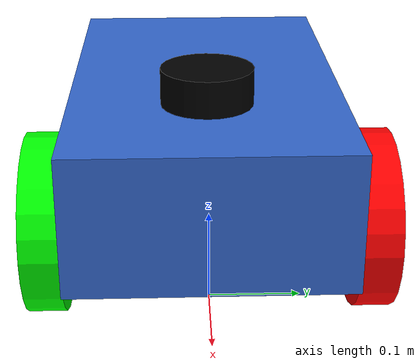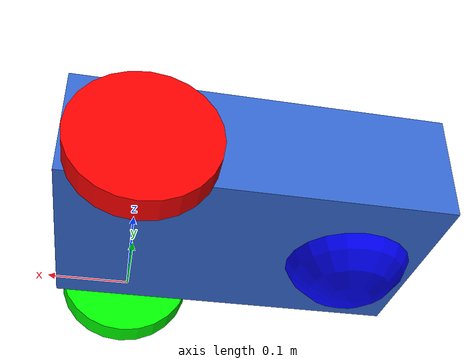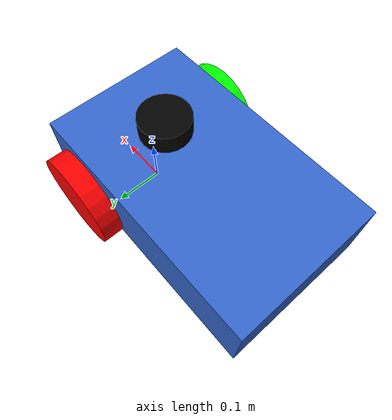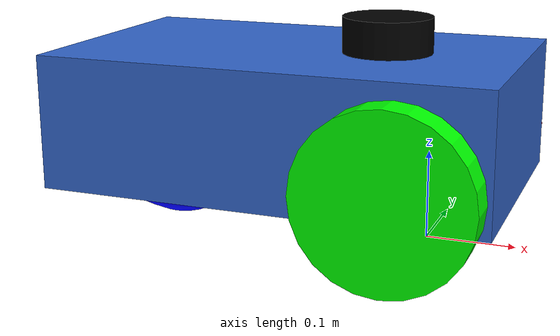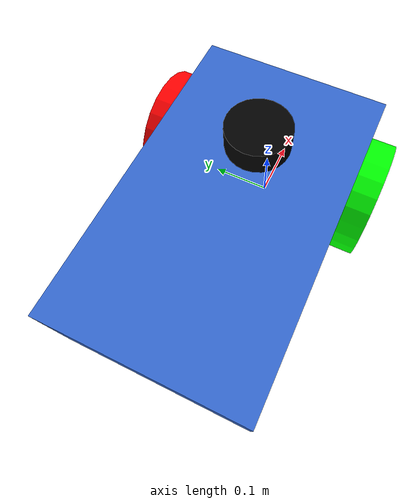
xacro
<?xml version="1.0"?>
<robot xmlns:xacro="http://www.ros.org/wiki/xacro" name="diff_drive_robot">

    <!-- ==================== КОНФИГУРАЦИЯ ПАРАМЕТРОВ ==================== -->
    <!-- Все размеры в метрах, массы в кг, углы в радианах -->

    <!-- Размеры базы (коробка) -->
    <xacro:property name="base_length" value="0.5"/>
    <xacro:property name="base_width" value="0.3"/>
    <xacro:property name="base_height" value="0.15"/>
    <xacro:property name="base_mass" value="5.0"/>

    <!-- Размеры колес -->
    <xacro:property name="wheel_radius" value="0.095"/>
    <xacro:property name="wheel_width" value="0.04"/>
    <xacro:property name="wheel_mass" value="0.5"/>

    <!-- Позиции колес -->
    <xacro:property name="wheel_x_offset" value="0.15"/>
    <xacro:property name="wheel_y_offset" value="${base_width/2 + wheel_width/2}"/>
    <xacro:property name="wheel_z_offset" value="${-base_height/4}"/>

    <!-- Размеры лидара -->
    <xacro:property name="lidar_radius" value="0.05"/>
    <xacro:property name="lidar_height" value="0.04"/>
    <xacro:property name="lidar_mass" value="0.15"/>
    <xacro:property name="lidar_x_offset" value="0.1"/>
    <xacro:property name="lidar_z_offset" value="${base_height/2 + lidar_height/2}"/>

    <!-- Параметры лидара -->
    <xacro:property name="lidar_samples" value="180"/>
    <xacro:property name="lidar_min_range" value="0.12"/>
    <xacro:property name="lidar_max_range" value="10.0"/>
    <xacro:property name="lidar_update_rate" value="20"/>

    <!-- Параметры дифференциального привода -->
    <xacro:property name="wheel_separation" value="${base_width + wheel_width}"/>
    <xacro:property name="max_linear_velocity" value="0.5"/>
    <xacro:property name="max_angular_velocity" value="1.0"/>
    <xacro:property name="odom_publish_frequency" value="50"/>

    <!-- ==================== БАЗОВОЕ ЗВЕНО ==================== -->
    <link name="base_footprint"></link>
    <joint name="base_joint" type="fixed">
        <origin xyz="${-wheel_x_offset} 0 ${-wheel_z_offset + wheel_radius}" rpy="0 0 0"/>
        <parent link="base_footprint"/>
        <child link="base_link"/>
    </joint>

    <link name="base_link">
        <visual>
            <origin xyz="0 0 0" rpy="0 0 0"/>
            <geometry>
                <box size="${base_length} ${base_width} ${base_height}"/>
            </geometry>
            <material name="blue">
                <color rgba="0.2 0.4 0.8 1.0"/>
            </material>
        </visual>

        <collision>
            <origin xyz="0 0 0" rpy="0 0 0"/>
            <geometry>
                <box size="${base_length} ${base_width} ${base_height}"/>
            </geometry>
        </collision>

        <inertial>
            <origin xyz="0 0 0" rpy="0 0 0"/>
            <mass value="${base_mass}"/>
            <inertia
                ixx="${base_mass * (base_width*base_width + base_height*base_height) / 12}"
                iyy="${base_mass * (base_length*base_length + base_height*base_height) / 12}"
                izz="${base_mass * (base_length*base_length + base_width*base_width) / 12}"
                ixy="0.0" ixz="0.0" iyz="0.0"/>
        </inertial>
    </link>

    <!-- ==================== ЛЕВОЕ КОЛЕСО ==================== -->

    <joint name="left_wheel_joint" type="continuous">
        <origin xyz="${wheel_x_offset} ${wheel_y_offset} ${wheel_z_offset}" rpy="0 0 0"/>
        <parent link="base_link"/>
        <child link="left_wheel"/>
        <axis xyz="0 1 0"/>
        <limit effort="100" velocity="100"/>
        <dynamics damping="0.0" friction="0.0"/>
    </joint>

    <link name="left_wheel">
        <visual>
            <origin xyz="0 0 0" rpy="${pi/2} 0 0"/>
            <geometry>
                <cylinder radius="${wheel_radius}" length="${wheel_width}"/>
            </geometry>
            <material name="red">
                <color rgba="1 0 0 1"/>
            </material>
        </visual>

        <collision>
            <origin xyz="0 0 0" rpy="${pi/2} 0 0"/>
            <geometry>
                <cylinder radius="${wheel_radius}" length="${wheel_width}"/>
            </geometry>
        </collision>

        <inertial>
            <origin xyz="0 0 0" rpy="${pi/2} 0 0"/>
            <mass value="${wheel_mass}"/>
            <inertia
                ixx="${wheel_mass * (3*wheel_radius*wheel_radius + wheel_width*wheel_width) / 12}"
                iyy="${wheel_mass * (3*wheel_radius*wheel_radius + wheel_width*wheel_width) / 12}"
                izz="${wheel_mass * wheel_radius*wheel_radius / 2}"
                ixy="0.0" ixz="0.0" iyz="0.0"/>
        </inertial>
    </link>

    <!-- ==================== ПРАВОЕ КОЛЕСО ==================== -->

    <joint name="right_wheel_joint" type="continuous">
        <origin xyz="${wheel_x_offset} ${-wheel_y_offset} ${wheel_z_offset}" rpy="0 0 0"/>
        <parent link="base_link"/>
        <child link="right_wheel"/>
        <axis xyz="0 1 0"/>
        <limit effort="100" velocity="100"/>
        <dynamics damping="0.0" friction="0.0"/>
    </joint>

    <link name="right_wheel">
        <visual>
            <origin xyz="0 0 0" rpy="${pi/2} 0 0"/>
            <geometry>
                <cylinder radius="${wheel_radius}" length="${wheel_width}"/>
            </geometry>
            <material name="green">
                <color rgba="0 1 0 1"/>
            </material>
        </visual>

        <collision>
            <origin xyz="0 0 0" rpy="${pi/2} 0 0"/>
            <geometry>
                <cylinder radius="${wheel_radius}" length="${wheel_width}"/>
            </geometry>
        </collision>

        <inertial>
            <origin xyz="0 0 0" rpy="${pi/2} 0 0"/>
            <mass value="${wheel_mass}"/>
            <inertia
                ixx="${wheel_mass * (3*wheel_radius*wheel_radius + wheel_width*wheel_width) / 12}"
                iyy="${wheel_mass * (3*wheel_radius*wheel_radius + wheel_width*wheel_width) / 12}"
                izz="${wheel_mass * wheel_radius*wheel_radius / 2}"
                ixy="0.0" ixz="0.0" iyz="0.0"/>
        </inertial>
    </link>

    <!-- ==================== ЗАДНИЙ КАСТЕР ==================== -->

    <joint name="caster_joint" type="fixed">
        <origin xyz="${-wheel_x_offset} 0 ${wheel_z_offset}" rpy="0 0 0"/>
        <parent link="base_link"/>
        <child link="caster_link"/>
    </joint>

    <link name="caster_link">
        <visual>
            <origin xyz="0 0 0" rpy="0 0 0"/>
            <geometry>
                <sphere radius="${wheel_radius}"/>
            </geometry>
            <material name="blue">
                <color rgba="0 0 1 1"/>
            </material>
        </visual>

        <collision>
            <origin xyz="0 0 0" rpy="0 0 0"/>
            <geometry>
                <sphere radius="${wheel_radius}"/>
            </geometry>
        </collision>

        <inertial>
            <mass value="0.1"/>
            <inertia ixx="0.0001" iyy="0.0001" izz="0.0001" ixy="0" ixz="0" iyz="0"/>
        </inertial>
    </link>

    <!-- ==================== ЛИДАР ==================== -->

    <joint name="lidar_joint" type="fixed">
        <origin xyz="${lidar_x_offset} 0 ${lidar_z_offset}" rpy="0 0 0"/>
        <parent link="base_link"/>
        <child link="lidar_link"/>
    </joint>

    <link name="lidar_link">
        <visual>
            <origin xyz="0 0 0" rpy="0 0 0"/>
            <geometry>
                <cylinder radius="${lidar_radius}" length="${lidar_height}"/>
            </geometry>
            <material name="black">
                <color rgba="0 0 0 1.0"/>
            </material>
        </visual>

        <collision>
            <origin xyz="0 0 0" rpy="0 0 0"/>
            <geometry>
                <cylinder radius="${lidar_radius}" length="${lidar_height}"/>
            </geometry>
        </collision>

        <inertial>
            <origin xyz="0 0 0" rpy="0 0 0"/>
            <mass value="${lidar_mass}"/>
            <inertia
                ixx="${lidar_mass * (3*lidar_radius*lidar_radius + lidar_height*lidar_height) / 12}"
                iyy="${lidar_mass * (3*lidar_radius*lidar_radius + lidar_height*lidar_height) / 12}"
                izz="${lidar_mass * lidar_radius*lidar_radius / 2}"
                ixy="0.0" ixz="0.0" iyz="0.0"/>
        </inertial>
    </link>

    <!-- ==================== ПЛАГИНЫ ДЛЯ GAZEBO SIM ==================== -->

    <!-- Плагин дифференциального привода -->
    <gazebo>
        <plugin filename="gz-sim-joint-state-publisher-system" name="gz::sim::systems::JointStatePublisher">
            <topic>joint_states</topic>
            <joint_name>left_wheel_joint</joint_name>
            <joint_name>right_wheel_joint</joint_name>
        </plugin>

        <plugin filename="gz-sim-diff-drive-system" name="gz::sim::systems::DiffDrive">

            <left_joint>left_wheel_joint</left_joint>
            <right_joint>right_wheel_joint</right_joint>
            <wheel_separation>${wheel_separation}</wheel_separation>
            <wheel_radius>${wheel_radius}</wheel_radius>

            <!-- Топики -->
            <topic>cmd_vel</topic>
            <odom_topic>odom</odom_topic>
            <frame_id>odom</frame_id>
            <child_frame_id>base_footprint</child_frame_id>
            <tf_topic>/tf</tf_topic>

            <!-- Одометрия -->
            <odom_publisher_frequency>${odom_publish_frequency}</odom_publisher_frequency>
        </plugin>
    </gazebo>

    <!-- Плагин лидара -->
    <gazebo reference="lidar_link">
        <sensor name="lidar_sensor" type="gpu_lidar">
            <pose>0 0 0 0 0 0</pose>
            <visualize>true</visualize>
            <update_rate>${lidar_update_rate}</update_rate>
            <topic>scan</topic>
            <gz_frame_id>lidar_link</gz_frame_id>
            <lidar>
                <scan>
                    <horizontal>
                        <samples>${lidar_samples}</samples>
                        <resolution>1</resolution>
                        <min_angle>-${pi}</min_angle>
                        <max_angle>${pi}</max_angle>
                    </horizontal>
                    <vertical>
                        <samples>1</samples>
                        <resolution>1</resolution>
                        <min_angle>0</min_angle>
                        <max_angle>0</max_angle>
                    </vertical>
                </scan>
                <range>
                    <min>${lidar_min_range}</min>
                    <max>${lidar_max_range}</max>
                    <resolution>0.01</resolution>
                </range>
                <noise>
                    <type>gaussian</type>
                    <mean>0.0</mean>
                    <stddev>0.01</stddev>
                </noise>
            </lidar>
            <always_on>1</always_on>
        </sensor>
    </gazebo>

    <gazebo reference="right_wheel">
        <mu1>0.2</mu1>
        <mu2>0.2</mu2>
    </gazebo>

    <gazebo reference="left_wheel">
        <mu1>0.2</mu1>
        <mu2>0.2</mu2>
    </gazebo>

    <gazebo reference="caster_link">
        <mu1>0.000001</mu1>
        <mu2>0.000001</mu2>
    </gazebo>
</robot>
